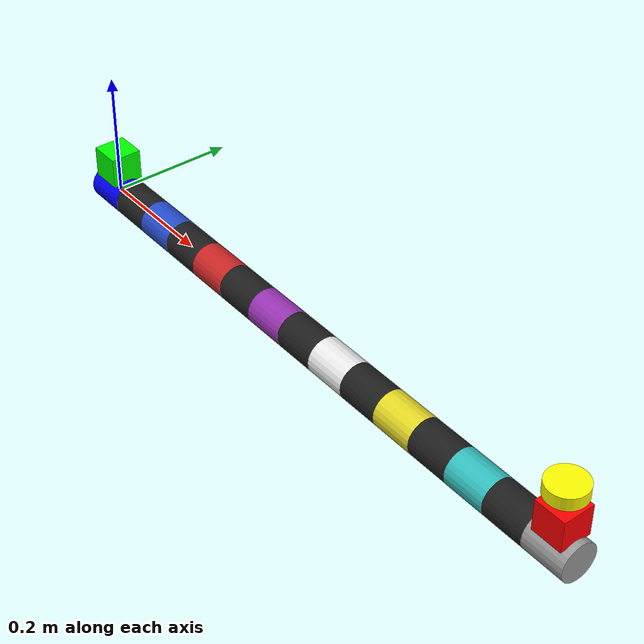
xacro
<?xml version="1.0"?>
<robot xmlns:xacro="http://www.ros.org/wiki/xacro" name="snake">

    <gazebo>
        <plugin name="gazebo_ros_control" filename="libgazebo_ros_control.so">
            <robotNamespace>/snake_bot</robotNamespace>
        </plugin>
    </gazebo>
    <!-- MACROS -->
    <xacro:property name="segment_radius" value="0.03"/>
    <xacro:property name="segment_length" value="0.07"/>
    <xacro:property name="segment_mass" value="0.5"/>
    <xacro:macro name="body_link" params="base_name parent_name colour">

        <link name="${base_name}_aux">
            <inertial>
                <origin xyz="0 0 0" rpy="0 0 0"/>
                <mass value="${segment_mass}"/>
                <inertia ixx="0.00025" ixy="0.0" ixz="0.0" iyy="0.00025" iyz="0.0" izz="0.000125"/>
            </inertial>
            <collision>
                <geometry>
                    <cylinder radius="${segment_radius}" length="${segment_length}"/>
                </geometry>
            </collision>
            <visual>
                <geometry>
                    <cylinder radius="${segment_radius}" length="${segment_length}"/>
                </geometry>
                <origin xyz="0 0 0" rpy="0 1.57 0"/>
            </visual>
    	</link>

    	<gazebo reference="${base_name}_aux">
            <kp>1000000000.0</kp>
            <kd>1000000000.0</kd>
            <mu1>10.0</mu1>
            <mu2>10.0</mu2>
            <material>Gazebo/Black</material>
            <self_collide>1</self_collide>
        </gazebo>

        <link name="${base_name}">
     	    <inertial>
            <origin xyz="0 0 0" rpy="0 0 0"/>
            <mass value="${segment_mass}"/>
            <inertia ixx="0.00025" ixy="0.0" ixz="0.0" iyy="0.00025" iyz="0.0" izz="0.000125"/>
        </inertial>
        <collision>
            <geometry>
                <cylinder radius="${segment_radius}" length="${segment_length}"/>
            </geometry>
        </collision>
        <visual>
            <geometry>
                <cylinder radius="${segment_radius}" length="${segment_length}"/>
            </geometry>
            <origin xyz="0 0 0" rpy="0 1.57 0"/>
        </visual>
    	</link>

    	<gazebo reference="${base_name}">
            <kp>1000000000.0</kp>
            <kd>1000000000.0</kd>
            <mu1>10.0</mu1>
            <mu2>10.0</mu2>
            <material>Gazebo/${colour}</material>
            <self_collide>1</self_collide>
        </gazebo>

        <!-- We add to the Origin displacement a margin for flex due to self colisions for parent_name and base_name-->
        <joint name="${base_name}_aux_joint" type="revolute">
    <parent link="${parent_name}"/>
    <child link="${base_name}_aux"/>
    <origin xyz="${segment_length} 0 0" rpy="0 0 0"/>
    <limit lower="-2.0" upper="2.0" effort="100.0" velocity="1.0"/>
    <axis xyz="0 0 1"/>
</joint>

       <joint name="${base_name}_joint" type="revolute">
    <parent link="${base_name}_aux"/>
    <child link="${base_name}"/>
    <origin xyz="${segment_length} 0 0" rpy="0 0 0"/>
    <limit lower="-2.0" upper="2.0" effort="100.0" velocity="1.0"/>
    <axis xyz="0 1 0"/>
</joint>

	    <transmission name="tran${base_name}_aux">
            <type>transmission_interface/SimpleTransmission</type>
            <joint name="${base_name}_aux_joint">
                <hardwareInterface>EffortJointInterface</hardwareInterface>
            </joint>
            <actuator name="motor${base_name}_aux">
                <hardwareInterface>EffortJointInterface</hardwareInterface>
                <mechanicalReduction>1</mechanicalReduction>
            </actuator>
        </transmission>

        <transmission name="tran${base_name}">
            <type>transmission_interface/SimpleTransmission</type>
            <joint name="${base_name}_joint">
                <hardwareInterface>EffortJointInterface</hardwareInterface>
            </joint>
            <actuator name="motor${base_name}">
                <hardwareInterface>EffortJointInterface</hardwareInterface>
                <mechanicalReduction>1</mechanicalReduction>
            </actuator>
        </transmission>

    </xacro:macro>
	<!-- * * * Link Definitions * * * -->

    <link name="base_link">
 	    <inertial>
            <origin xyz="0 0 0" rpy="0 0 0"/>
            <mass value="1.0" />
            <inertia ixx="0.00025" ixy="0.0" ixz="0.0" iyy="0.00025" iyz="0.0" izz="0.000125"/>
        </inertial>
        <collision>
            <geometry>
                <cylinder radius="${segment_radius}" length="${segment_length}"/>
            </geometry>
        </collision>
        <visual>
            <geometry>
                <cylinder radius="${segment_radius}" length="${segment_length}"/>
            </geometry>
            <origin xyz="0 0 0" rpy="0 1.57 0"/>
            <material name="blue">
                <color rgba="0.0 0.0 1.0 1.0"/>
            </material>
        </visual>
	</link>

    <gazebo reference="base_link">
        <kp>100000000000000.0</kp>
        <kd>100000000000000.0</kd>
        <mu1>10.0</mu1>
        <mu2>10.0</mu2>
        <material>Gazebo/Green</material>
        <self_collide>1</self_collide>
    </gazebo>

    <joint name="camera_joint" type="fixed">
        <parent link="snake_body_7"/>
        <child link="camera_link"/>
        <origin xyz="0 0 0.05" rpy="0 0 0"/>
    </joint>

    <link name="camera_link">
        <visual>
            <geometry>
                <box size="0.05 0.05 0.05"/>
            </geometry>
            <material>
                <color rgba="1.0 0.0 0.0 1.0"/>
            </material>
        </visual>
        <collision>
            <origin xyz="0 0 0" rpy="0 0 0"/>
            <geometry>
                <box size="0.05 0.05 0.05"/>
            </geometry>
        </collision>
    </link>

    <gazebo reference="camera_link">
        <sensor name="snake_cam" type="camera">
            <always_on>true</always_on>
            <update_rate>30</update_rate>
            <visualize>true</visualize>
            <camera>
                <horizontal_fov>1.3962634</horizontal_fov>
                <image>
                    <width>640</width>
                    <height>480</height>
                    <format>R8G8B8</format>
                </image>
                <clip>
                    <near>0.1</near>
                    <far>100</far>
                </clip>
            </camera>
            <plugin name="camera_controller" filename="libgazebo_ros_camera.so">
                <camera_name>snake_cam</camera_name>
                <image_topic_name>image_raw</image_topic_name>
                <camera_info_topic_name>camera_info</camera_info_topic_name>
                <frame_name>camera_link</frame_name>
                <robot_namespace>/snake_bot</robot_namespace>
            </plugin>
        </sensor>
    </gazebo>

    <!-- Camera for base_link -->
    <joint name="base_camera_joint" type="fixed">
        <parent link="base_link"/>
        <child link="base_camera_link"/>
        <origin xyz="0 0 0.05" rpy="0 3.14159 0"/>
    </joint>

    <link name="base_camera_link">
        <visual>
            <geometry>
                <box size="0.05 0.05 0.05"/>
            </geometry>
            <material>
                <color rgba="0.0 1.0 0.0 1.0"/>
            </material>
            <origin xyz="0 0 0" rpy="0 3.14159 0"/>
        </visual>
        <collision>
            <origin xyz="0 0 0" rpy="0 3.14159 0"/>
            <geometry>
                <box size="0.05 0.05 0.05"/>
            </geometry>
        </collision>
    </link>

    <gazebo reference="base_camera_link">
        <sensor name="base_snake_cam" type="camera">
            <always_on>true</always_on>
            <update_rate>30</update_rate>
            <visualize>true</visualize>
            <camera>
                <horizontal_fov>1.3962634</horizontal_fov>
                <image>
                    <width>640</width>
                    <height>480</height>
                    <format>R8G8B8</format>
                </image>
                <clip>
                    <near>0.1</near>
                    <far>100</far>
                </clip>
            </camera>
            <plugin name="base_camera_controller" filename="libgazebo_ros_camera.so">
                <camera_name>base_snake_cam</camera_name>
                <image_topic_name>base_image_raw</image_topic_name>
                <camera_info_topic_name>base_camera_info</camera_info_topic_name>
                <frame_name>base_camera_link</frame_name>
                <robot_namespace>/snake_bot</robot_namespace>
            </plugin>
        </sensor>
    </gazebo>

    <xacro:body_link base_name="snake_body_1" parent_name="base_link" colour="Blue"/>
    <xacro:body_link base_name="snake_body_2" parent_name="snake_body_1" colour="Red"/>
    <xacro:body_link base_name="snake_body_3" parent_name="snake_body_2" colour="Purple"/>
    <xacro:body_link base_name="snake_body_4" parent_name="snake_body_3" colour="White"/>
    <xacro:body_link base_name="snake_body_5" parent_name="snake_body_4" colour="Yellow"/>
    <xacro:body_link base_name="snake_body_6" parent_name="snake_body_5" colour="Turquoise"/>
    <xacro:body_link base_name="snake_body_7" parent_name="snake_body_6" colour="Grey"/>

<!-- LIDAR JOINT -->
<joint name="lidar_joint" type="fixed">
  <parent link="snake_body_7"/>
  <child link="lidar_link"/>
  <origin xyz="0 0 0.1" rpy="0 0 0"/>
</joint>

<!-- LIDAR LINK -->
<link name="lidar_link">
  <visual>
    <geometry>
      <cylinder radius="0.03" length="0.02"/>
    </geometry>
    <origin xyz="0 0 0" rpy="0 0 0"/>
    <material>
      <color rgba="1.0 1.0 0.0 1.0"/>
    </material>
  </visual>
  <collision>
    <origin xyz="0 0 0" rpy="0 0 0"/>
    <geometry>
      <cylinder radius="0.03" length="0.02"/>
    </geometry>
  </collision>
</link>

<gazebo reference="lidar_link">
  <sensor name="snake_lidar" type="ray">
    <pose>0 0 0 0 0 0</pose>
    <visualize>true</visualize>
    <update_rate>20</update_rate>
    <ray>
      <scan>
        <horizontal>
          <samples>720</samples>
          <resolution>1</resolution>
          <min_angle>-1.5708</min_angle>
          <max_angle>1.5708</max_angle>
        </horizontal>
      </scan>
      <range>
        <min>0.12</min>
        <max>2.0</max> <!-- decreased from 5.0 to 2.0 -->
        <resolution>0.01</resolution>
      </range>
      <noise>
        <type>gaussian</type>
        <mean>0.0</mean>
        <stddev>0.01</stddev>
      </noise>
    </ray>
    <plugin name="gazebo_ros_laser_controller" filename="libgazebo_ros_laser.so">
      <topicName>scan</topicName>
      <frameName>lidar_link</frameName>
      <robotNamespace>/snake_bot</robotNamespace>
    </plugin>
  </sensor>
</gazebo>
</robot>
